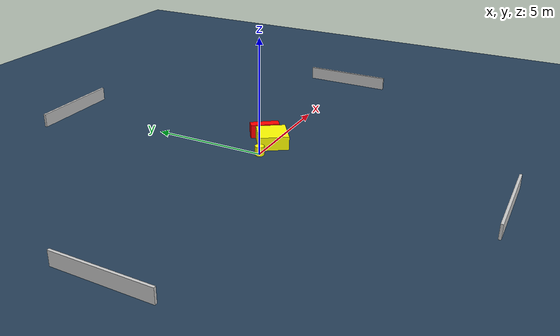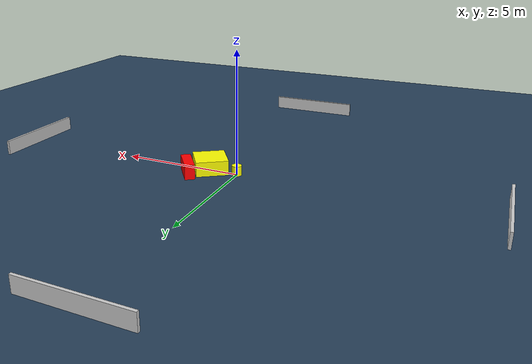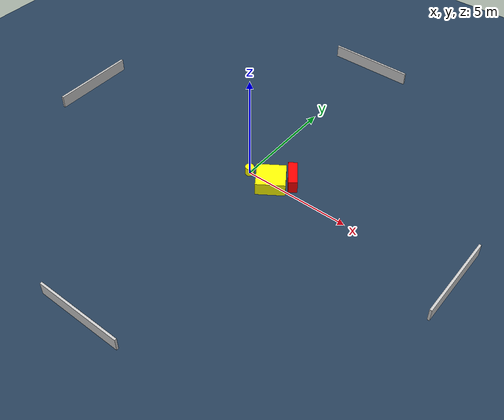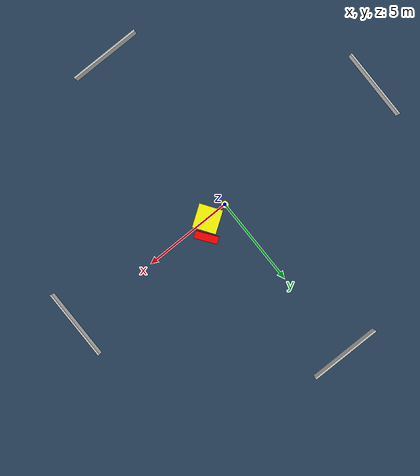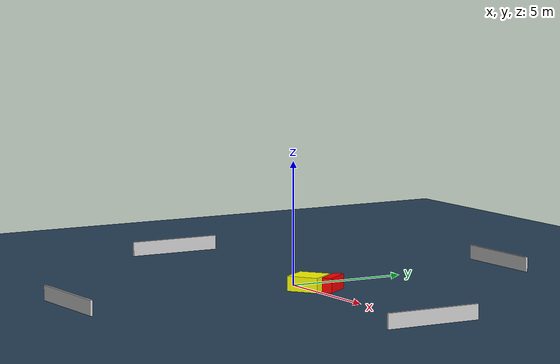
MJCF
<?xml version="1.0" ?>
<mujoco model="generated_environment">
  <option timestep="0.01" integrator="RK4" cone="elliptic"/>
  <default>
    <geom density="1"/>
  </default>
  <asset>
    <texture builtin="gradient" height="3072" name="skybox" rgb1="0.3 0.5 0.7" rgb2="0 0 0" type="skybox" width="512"/>
    <texture builtin="checker" height="300" name="groundplane" rgb1="0.2 0.3 0.4" rgb2="0.1 0.2 0.3" type="2d" width="300"/>
    <material name="groundplane" reflectance="0.2" texrepeat="5 5" texture="groundplane"/>
  </asset>
  <worldbody>
    <light dir="0 0 -1" directional="true" pos="0 0 1.5"/>
    <geom condim="3" friction="0.5 0.005 0.001" material="groundplane" name="floor" pos="0 0 0" size="0 0 0.05" type="plane"/>
    <body name="walls">
      <geom name="wall_1" condim="4" pos="-10.0 0.0 0.3" rgba="0.800000011920929 0.800000011920929 0.800000011920929 1.0" size="0.05 2.0 0.3" type="box"/>
      <geom name="wall_2" condim="4" pos="10.0 0.0 0.3" rgba="0.800000011920929 0.800000011920929 0.800000011920929 1.0" size="0.05 2.0 0.3" type="box"/>
      <geom name="wall_3" condim="4" pos="0.0 -10.0 0.3" rgba="0.800000011920929 0.800000011920929 0.800000011920929 1.0" size="2.0 0.05 0.3" type="box"/>
      <geom name="wall_4" condim="4" pos="0.0 10.0 0.3" rgba="0.800000011920929 0.800000011920929 0.800000011920929 1.0" size="2.0 0.05 0.3" type="box"/>
    </body>
    <body name="robot">
      <joint name="joint_x" type="slide" pos="0 0 0" axis="1 0 0"/>
      <joint name="joint_y" type="slide" pos="0 0 0" axis="0 1 0"/>
      <geom name="robot" type="cylinder" pos="0.0 0.0 0.2" size="0.2 0.2 0.0" mass="5.0" friction="1.0 0.005 0.0001" condim="4" rgba="1.0 1.0 0.0 1.0"/>
    </body>
    <body name="obstacle_1_movable">
      <geom name="obstacle_1_movable" condim="4" pos="1.1720997877427781 0.008608215541630156 0.3" euler="0 0 34.235895205764734" friction="0.0 0.005 0.001" rgba="1.0 1.0 0.0 1.0" size="0.6535602501874291 0.6431678045187006 0.3" type="box" mass="0.1"/>
      <joint type="free"/>
    </body>
    <body name="obstacle_2_static">
      <geom name="obstacle_2_static" condim="4" pos="1.826460467021168 0.718778599918622 0.3" euler="0 0 126.3778202694296" friction="0.0 0.005 0.001" rgba="1.0 0.0 0.0 1.0" size="0.6338393983078925 0.20104379242595039 0.3" type="box"/>
    </body>
  </worldbody>
  <actuator>
    <motor name="actuator_x" joint="joint_x" gear="1" ctrlrange="-1 1"/>
    <motor name="actuator_y" joint="joint_y" gear="1" ctrlrange="-1 1"/>
  </actuator>
</mujoco>
